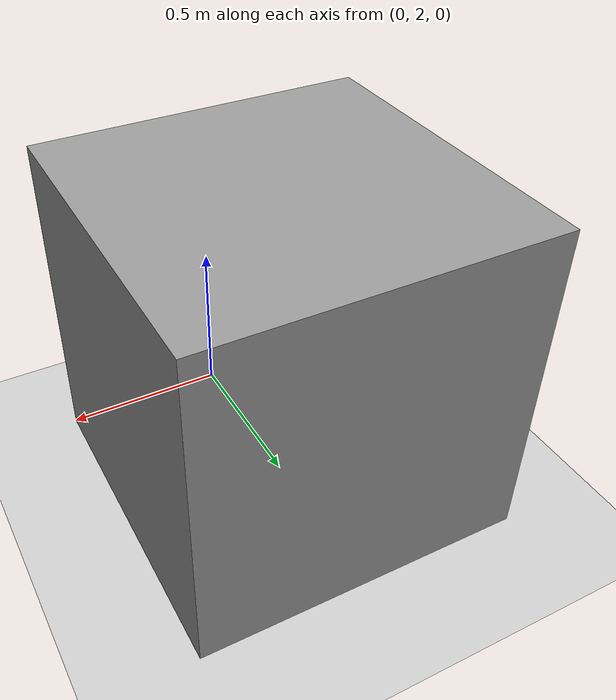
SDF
<?xml version="1.0" ?>
<sdf version="1.5">
  <world name="unitboxworld">
    <!-- A global light source -->
    <include>
      <uri>model://sun</uri>
    </include>
    <!-- A ground plane -->
    <include>
      <uri>model://ground_plane</uri>
    </include>
    <!-- Only one ROS interface plugin is required per world, as any other plugin can connect a Gazebo
         topic to a ROS topic (or vise versa). -->
    <plugin name="ros_interface_plugin" filename="librotors_gazebo_ros_interface_plugin.so"/>

    <spherical_coordinates>
      <surface_model>EARTH_WGS84</surface_model>
      <latitude_deg>47.3667</latitude_deg>
      <longitude_deg>8.5500</longitude_deg>
      <elevation>500.0</elevation>
      <heading_deg>0</heading_deg>
    </spherical_coordinates>
    <physics type='ode'>
      <ode>
        <solver>
          <type>quick</type>
          <iters>1000</iters>
          <sor>1.3</sor>
        </solver>
        <constraints>
          <cfm>0</cfm>
          <erp>0.2</erp>
          <contact_max_correcting_vel>100</contact_max_correcting_vel>
          <contact_surface_layer>0.001</contact_surface_layer>
        </constraints>
      </ode>
      <max_step_size>0.01</max_step_size>
      <real_time_factor>1</real_time_factor>
      <real_time_update_rate>100</real_time_update_rate>
      <gravity>0 0 -9.8</gravity>
    </physics>

    <!-- A unit box -->
    <model name='unit_box_0_0'>
      <pose frame='world'>0 2.5 0.5 0 0 0</pose>
      <link name='unitboxlink'>
        <inertial>
          <mass>1</mass>
          <inertia>
            <ixx>0.166667</ixx>
            <ixy>0</ixy>
            <ixz>0</ixz>
            <iyy>0.166667</iyy>
            <iyz>0</iyz>
            <izz>0.166667</izz>
          </inertia>
        </inertial>
        <collision name='unitboxcollision'>
          <geometry>
            <box>
              <size>1 1 1</size>
            </box>
          </geometry>
          <max_contacts>10</max_contacts>
          <surface>
            <contact>
              <ode/>
            </contact>
            <bounce/>
            <friction>
              <torsional>
                <ode/>
              </torsional>
              <ode/>
            </friction>
          </surface>
        </collision>
        <visual name='unitboxvisual'>
          <geometry>
            <box>
              <size>1 1 1</size>
            </box>
          </geometry>
          <material>
            <script>
              <name>Gazebo/Grey</name>
              <uri>file://media/materials/scripts/gazebo.material</uri>
            </script>
          </material>
        </visual>
        <self_collide>0</self_collide>
        <kinematic>0</kinematic>
        <gravity>1</gravity>
      </link>
    </model>
  </world>
</sdf>
